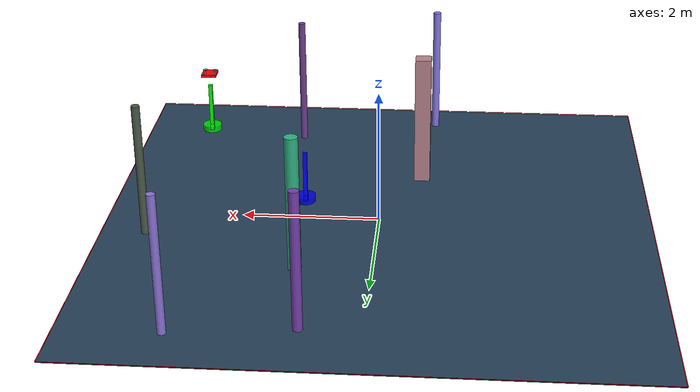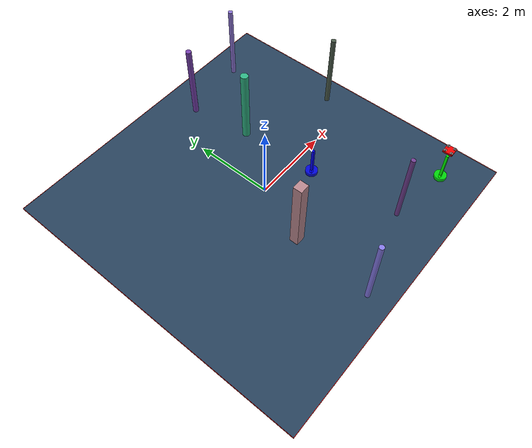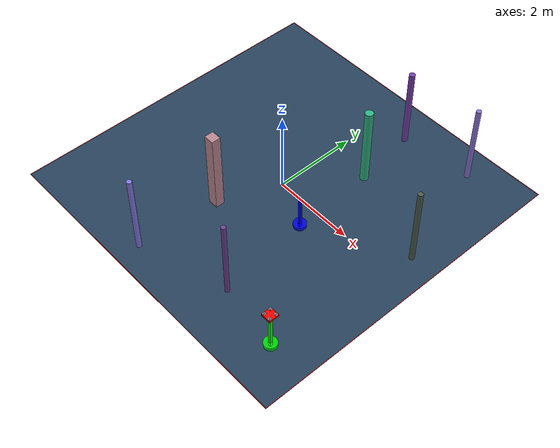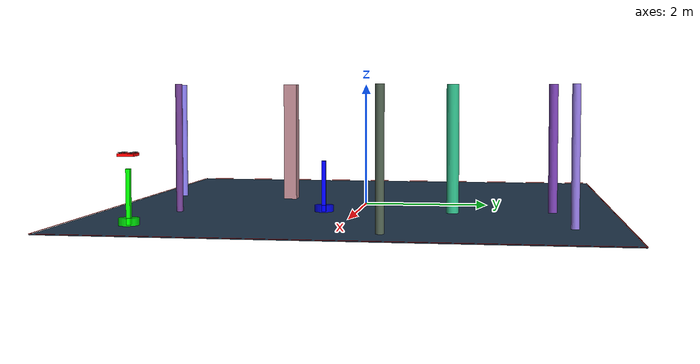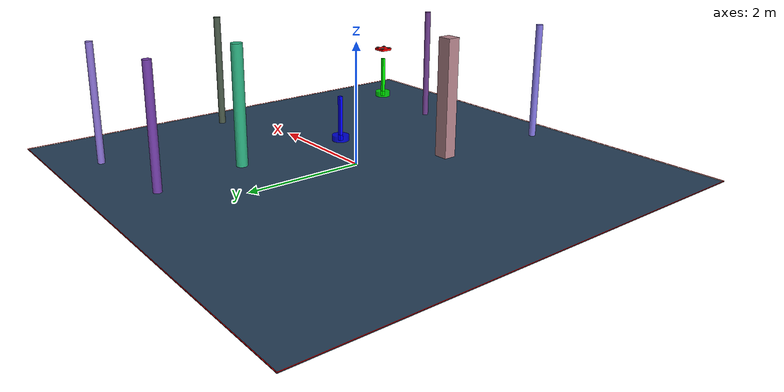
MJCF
<?xml version='1.0' encoding='utf-8'?>
<mujoco model="complex_uav_env">
  <compiler angle="degree" coordinate="local" inertiafromgeom="true" />
  <option integrator="RK4" timestep="0.01" />

  <visual>
    <headlight diffuse="0.6 0.6 0.6" ambient="0.3 0.3 0.3" />
    <rgba haze="0.15 0.25 0.35 1" />
    <global offwidth="2560" offheight="1440" />
  </visual>

  <asset>
    <texture type="skybox" builtin="gradient" rgb1="0.3 0.5 0.7" rgb2="0 0 0" width="512" height="3072" />
    <texture name="grid" type="2d" builtin="checker" rgb1="0.1 0.2 0.3" rgb2="0.2 0.3 0.4" width="512" height="512" />
    <material name="grid" texture="grid" texrepeat="1 1" />
  </asset>

  <worldbody>

    <geom name="ground" type="plane" size="4.0 4.0 0.1" material="grid" />
    <light name="light1" pos="0 0 4" dir="0 0 -1" diffuse="1 1 1" />

    <geom name="start_marker" type="cylinder" size="0.15 0.05" pos="3.0 -3.0 0.05" rgba="0 1 0 0.8" />
    <geom name="start_pole" type="box" size="0.03 0.03 0.4" pos="3.0 -3.0 0.4" rgba="0 1 0 1" />

    <geom name="goal_marker" type="cylinder" size="0.15 0.05" pos="1.144010943300784 -0.5210014468811015 0.05" rgba="0 0 1 0.8" />
    <geom name="goal_pole" type="box" size="0.03 0.03 0.4" pos="1.144010943300784 -0.5210014468811015 0.4" rgba="0 0 1 1" />

    <body name="chassis" pos="3.0 -3.0 1.0">
      <joint type="free" name="root" />
      <geom type="box" size="0.12 0.12 0.02" rgba="1.0 0.0 0.0 1.0" mass="0.8" />

      <geom type="box" size="0.08 0.01 0.005" pos="0 0 0.01" rgba="0.3 0.3 0.3 1" />
      <geom type="box" size="0.01 0.08 0.005" pos="0 0 0.01" rgba="0.3 0.3 0.3 1" />

      <geom type="cylinder" size="0.015 0.02" pos="0.08 0.08 0.015" rgba="0.2 0.2 0.2 1" />
      <geom type="cylinder" size="0.015 0.02" pos="-0.08 0.08 0.015" rgba="0.2 0.2 0.2 1" />
      <geom type="cylinder" size="0.015 0.02" pos="0.08 -0.08 0.015" rgba="0.2 0.2 0.2 1" />
      <geom type="cylinder" size="0.015 0.02" pos="-0.08 -0.08 0.015" rgba="0.2 0.2 0.2 1" />

      <geom type="cylinder" size="0.04 0.002" pos="0.08 0.08 0.035" rgba="0.7 0.7 0.7 0.8" />
      <geom type="cylinder" size="0.04 0.002" pos="-0.08 0.08 0.035" rgba="0.7 0.7 0.7 0.8" />
      <geom type="cylinder" size="0.04 0.002" pos="0.08 -0.08 0.035" rgba="0.7 0.7 0.7 0.8" />
      <geom type="cylinder" size="0.04 0.002" pos="-0.08 -0.08 0.035" rgba="0.7 0.7 0.7 0.8" />

      <site name="motor1" pos="0.08 0.08 0" size="0.01" />
      <site name="motor2" pos="-0.08 0.08 0" size="0.01" />
      <site name="motor3" pos="0.08 -0.08 0" size="0.01" />
      <site name="motor4" pos="-0.08 -0.08 0" size="0.01" />
    </body>
    <geom name="test_obs_0" type="cylinder" size="0.05862944764444842 1.0" pos="2.5696631047449094 3.2463826821804496 1.0" rgba="0.5464002955636915 0.4515908919067987 0.837862604763893 1.0" />
    <geom name="test_obs_1" type="box" size="0.11999705264195606 0.10829229718639911 1.0" pos="-0.576330788125845 -1.4103506282503684 1.0" rgba="0.7140145345880448 0.5208406418729493 0.5514234010116777 1.0" />
    <geom name="test_obs_2" type="cylinder" size="0.09596064193715169 1.0" pos="1.0701388581778106 1.4960703222531118 1.0" rgba="0.17653930600477166 0.7001978274151246 0.5135482765175209 1.0" />
    <geom name="test_obs_3" type="cylinder" size="0.05847617007845714 1.0" pos="-0.7213202556888297 -3.4174516852204673 1.0" rgba="0.5171786685550456 0.4699052428388272 0.8989489947905747 1.0" />
    <geom name="test_obs_4" type="cylinder" size="0.07005002250968252 1.0" pos="0.8435670686614981 3.041912587734115 1.0" rgba="0.4586559061180754 0.24588100153012268 0.6731522917852307 1.0" />
    <geom name="test_obs_5" type="cylinder" size="0.06019917996221216 1.0" pos="3.349437729478023 0.6294527480517854 1.0" rgba="0.2915002701098639 0.35432409756378314 0.29166251320394465 1.0" />
    <geom name="test_obs_6" type="cylinder" size="0.05314549914925652 1.0" pos="1.4238335250918461 -2.7819309035062907 1.0" rgba="0.43493106065843445 0.23976631788729402 0.561977096821962 1.0" />
  <geom name="boundary_north" type="box" size="4.0 0.005 0.002" pos="0 4.0 0.002" rgba="1.0 0.0 0.0 1.0" /><geom name="boundary_south" type="box" size="4.0 0.005 0.002" pos="0 -4.0 0.002" rgba="1.0 0.0 0.0 1.0" /><geom name="boundary_east" type="box" size="0.005 4.0 0.002" pos="4.0 0 0.002" rgba="1.0 0.0 0.0 1.0" /><geom name="boundary_west" type="box" size="0.005 4.0 0.002" pos="-4.0 0 0.002" rgba="1.0 0.0 0.0 1.0" /></worldbody>

  <actuator>
    <motor name="m1" gear="0 0 1 0 0 0" site="motor1" />
    <motor name="m2" gear="0 0 1 0 0 0" site="motor2" />
    <motor name="m3" gear="0 0 1 0 0 0" site="motor3" />
    <motor name="m4" gear="0 0 1 0 0 0" site="motor4" />
  </actuator>
</mujoco>
